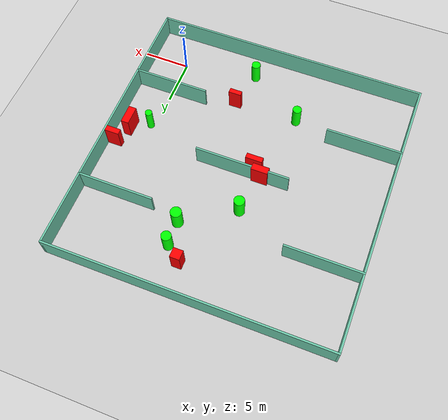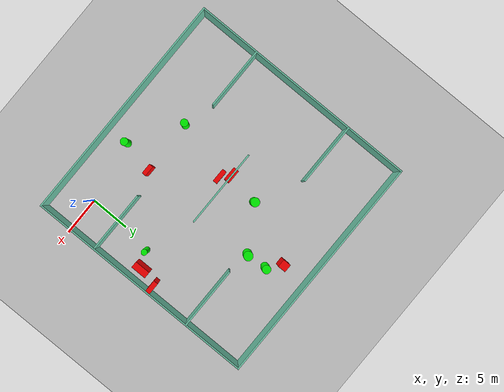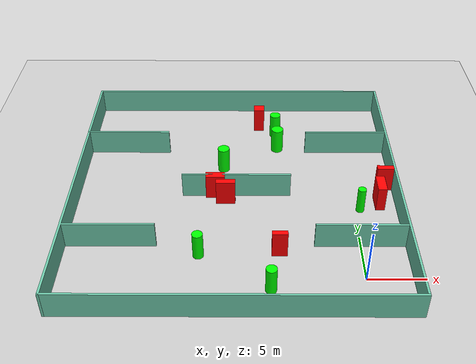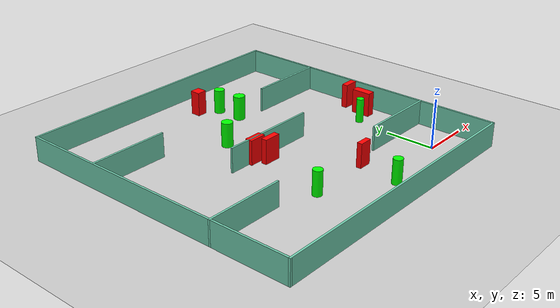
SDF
<sdf version="1.7">
 <world name="default">
  <light name="sun" type="directional">
   <pose>0 0 10 0 -0 0</pose>
   <diffuse>0.8 0.8 0.8 1</diffuse>
   <specular>0.2 0.2 0.2 1</specular>
   <attenuation>
    <range>1000</range>
    <constant>0.9</constant>
    <linear>0.01</linear>
    <quadratic>0.001</quadratic>
   </attenuation>
   <direction>-0.5 0.1 -0.9</direction>
   <spot><inner_angle>0</inner_angle><outer_angle>0</outer_angle><falloff>0</falloff></spot>
  </light>
  <model name="ground_plane">
   <static>1</static>
   <link name="link">
    <collision name="collision">
     <geometry><plane><normal>0 0 1</normal><size>100 100</size></plane></geometry>
     <surface>
      <contact><collide_bitmask>65535</collide_bitmask></contact>
      <friction><ode><mu>100</mu><mu2>50</mu2></ode></friction>
     </surface>
    </collision>
    <visual name="visual">
     <cast_shadows>0</cast_shadows>
     <geometry><plane><normal>0 0 1</normal><size>100 100</size></plane></geometry>
     <material>
      <script><uri>file://media/materials/scripts/gazebo.material</uri><name>Gazebo/Grey</name></script>
     </material>
    </visual>
   </link>
  </model>
  <gravity>0 0 -9.8</gravity>
  <magnetic_field>6e-06 2.3e-05 -4.2e-05</magnetic_field>
  <atmosphere type="adiabatic"/>
  <physics type="ode">
   <max_step_size>0.001</max_step_size>
   <real_time_factor>1</real_time_factor>
   <real_time_update_rate>1000</real_time_update_rate>
  </physics>
  <scene><ambient>0.4 0.4 0.4 1</ambient><background>0.7 0.7 0.7 1</background><shadows>1</shadows></scene>
  <spherical_coordinates>
   <surface_model>EARTH_WGS84</surface_model>
   <latitude_deg>0</latitude_deg>
   <longitude_deg>0</longitude_deg>
   <elevation>0</elevation>
   <heading_deg>0</heading_deg>
  </spherical_coordinates>
  <model name="my_base_walls">
   <link name="Wall_10">
    <collision name="Wall_10_Collision">
     <geometry><box><size>8.2 0.2 2.5</size></box></geometry>
     <pose>0 0 1.25 0 -0 0</pose>
    </collision>
    <visual name="Wall_10_Visual">
     <pose>0 0 1.25 0 -0 0</pose>
     <geometry><box><size>8.2 0.2 2.5</size></box></geometry>
     <material>
      <script><uri>file://media/materials/scripts/gazebo.material</uri><name>Gazebo/Grey</name></script>
      <ambient>0.435294 0.796078 0.67451 1</ambient>
     </material>
     <meta><layer>0</layer></meta>
    </visual>
    <pose>-11 -7 0 0 -0 0</pose>
   </link>
   <link name="Wall_12">
    <collision name="Wall_12_Collision">
     <geometry><box><size>8.2 0.2 2.5</size></box></geometry>
     <pose>0 0 1.25 0 -0 0</pose>
    </collision>
    <visual name="Wall_12_Visual">
     <pose>0 0 1.25 0 -0 0</pose>
     <geometry><box><size>8.2 0.2 2.5</size></box></geometry>
     <material>
      <script><uri>file://media/materials/scripts/gazebo.material</uri><name>Gazebo/Grey</name></script>
      <ambient>0.435294 0.796078 0.67451 1</ambient>
     </material>
     <meta><layer>0</layer></meta>
    </visual>
    <pose>-11 7 0 0 -0 0</pose>
   </link>
   <link name="Wall_14">
    <collision name="Wall_14_Collision">
     <geometry><box><size>8.2 0.2 2.5</size></box></geometry>
     <pose>0 0 1.25 0 -0 0</pose>
    </collision>
    <visual name="Wall_14_Visual">
     <pose>0 0 1.25 0 -0 0</pose>
     <geometry><box><size>8.2 0.2 2.5</size></box></geometry>
     <material>
      <script><uri>file://media/materials/scripts/gazebo.material</uri><name>Gazebo/Grey</name></script>
      <ambient>0.435294 0.796078 0.67451 1</ambient>
     </material>
     <meta><layer>0</layer></meta>
    </visual>
    <pose>11 7 0 0 -0 3.14159</pose>
   </link>
   <link name="Wall_16">
    <collision name="Wall_16_Collision">
     <geometry><box><size>10.2 0.2 2.5</size></box></geometry>
     <pose>0 0 1.25 0 -0 0</pose>
    </collision>
    <visual name="Wall_16_Visual">
     <pose>0 0 1.25 0 -0 0</pose>
     <geometry><box><size>10.2 0.2 2.5</size></box></geometry>
     <material>
      <script><uri>file://media/materials/scripts/gazebo.material</uri><name>Gazebo/Grey</name></script>
      <ambient>0.435294 0.796078 0.67451 1</ambient>
     </material>
     <meta><layer>0</layer></meta>
    </visual>
    <pose>0 0 0 0 -0 3.14159</pose>
   </link>
   <link name="Wall_2">
    <collision name="Wall_2_Collision">
     <geometry><box><size>30.2 0.2 2.5</size></box></geometry>
     <pose>0 0 1.25 0 -0 0</pose>
    </collision>
    <visual name="Wall_2_Visual">
     <pose>0 0 1.25 0 -0 0</pose>
     <geometry><box><size>30.2 0.2 2.5</size></box></geometry>
     <material>
      <script><uri>file://media/materials/scripts/gazebo.material</uri><name>Gazebo/Grey</name></script>
      <ambient>0.435294 0.796078 0.67451 1</ambient>
     </material>
     <meta><layer>0</layer></meta>
    </visual>
    <pose>0 -15 0 0 -0 3.14159</pose>
   </link>
   <link name="Wall_3">
    <collision name="Wall_3_Collision">
     <geometry><box><size>30.2 0.2 2.5</size></box></geometry>
     <pose>0 0 1.25 0 -0 0</pose>
    </collision>
    <visual name="Wall_3_Visual">
     <pose>0 0 1.25 0 -0 0</pose>
     <geometry><box><size>30.2 0.2 2.5</size></box></geometry>
     <material>
      <script><uri>file://media/materials/scripts/gazebo.material</uri><name>Gazebo/Grey</name></script>
      <ambient>0.435294 0.796078 0.67451 1</ambient>
     </material>
     <meta><layer>0</layer></meta>
    </visual>
    <pose>-15 0 0 0 -0 1.5708</pose>
   </link>
   <link name="Wall_4">
    <collision name="Wall_4_Collision">
     <geometry><box><size>30.2 0.2 2.5</size></box></geometry>
     <pose>0 0 1.25 0 -0 0</pose>
    </collision>
    <visual name="Wall_4_Visual">
     <pose>0 0 1.25 0 -0 0</pose>
     <geometry><box><size>30.2 0.2 2.5</size></box></geometry>
     <material>
      <script><uri>file://media/materials/scripts/gazebo.material</uri><name>Gazebo/Grey</name></script>
      <ambient>0.435294 0.796078 0.67451 1</ambient>
     </material>
     <meta><layer>0</layer></meta>
    </visual>
    <pose>0 15 0 0 -0 0</pose>
   </link>
   <link name="Wall_6">
    <collision name="Wall_6_Collision">
     <geometry><box><size>30.2 0.2 2.5</size></box></geometry>
     <pose>0 0 1.25 0 -0 0</pose>
    </collision>
    <visual name="Wall_6_Visual">
     <pose>0 0 1.25 0 -0 0</pose>
     <geometry><box><size>30.2 0.2 2.5</size></box></geometry>
     <material>
      <script><uri>file://media/materials/scripts/gazebo.material</uri><name>Gazebo/Grey</name></script>
      <ambient>0.435294 0.796078 0.67451 1</ambient>
     </material>
     <meta><layer>0</layer></meta>
    </visual>
    <pose>15 0 0 0 -0 1.5708</pose>
   </link>
   <link name="Wall_8">
    <collision name="Wall_8_Collision">
     <geometry><box><size>8.2 0.2 2.5</size></box></geometry>
     <pose>0 0 1.25 0 -0 0</pose>
    </collision>
    <visual name="Wall_8_Visual">
     <pose>0 0 1.25 0 -0 0</pose>
     <geometry><box><size>8.2 0.2 2.5</size></box></geometry>
     <material>
      <script><uri>file://media/materials/scripts/gazebo.material</uri><name>Gazebo/Grey</name></script>
      <ambient>0.435294 0.796078 0.67451 1</ambient>
     </material>
     <meta><layer>0</layer></meta>
    </visual>
    <pose>11 -7 0 0 -0 3.14159</pose>
   </link>
   <static>1</static>
   <pose>-11 11 0 0 -0 0</pose>
  </model>
  <model name="cylinder1">
   <static>1</static>
   <link name="link">
    <inertial>
     <mass>1</mass>
     <inertia><ixx>0.5</ixx><ixy>0</ixy><ixz>0</ixz><iyy>0.5</iyy><iyz>0</iyz><izz>1</izz></inertia>
    </inertial>
    <collision name="collision">
     <geometry><cylinder><radius>0.37866978920210953</radius><length>2.5</length></cylinder></geometry>
    </collision>
    <visual name="visual">
     <geometry><cylinder><radius>0.37866978920210953</radius><length>2.5</length></cylinder></geometry>
     <material>
      <ambient>0 1 0 1</ambient>
      <diffuse>0 1 0 1</diffuse>
      <specular>0.1 0.1 0.1 1</specular>
      <emissive>0 0 0 0</emissive>
     </material>
    </visual>
   </link>
   <pose>0.5034902190186088 8.801945231379603 1.25 0 0 0</pose>
  </model>
  <model name="cylinder2">
   <static>1</static>
   <link name="link">
    <inertial>
     <mass>1</mass>
     <inertia><ixx>0.5</ixx><ixy>0</ixy><ixz>0</ixz><iyy>0.5</iyy><iyz>0</iyz><izz>1</izz></inertia>
    </inertial>
    <collision name="collision">
     <geometry><cylinder><radius>0.5324692102656692</radius><length>2.5</length></cylinder></geometry>
    </collision>
    <visual name="visual">
     <geometry><cylinder><radius>0.5324692102656692</radius><length>2.5</length></cylinder></geometry>
     <material>
      <ambient>0 1 0 1</ambient>
      <diffuse>0 1 0 1</diffuse>
      <specular>0.1 0.1 0.1 1</specular>
      <emissive>0 0 0 0</emissive>
     </material>
    </visual>
   </link>
   <pose>-7.061003203140233 21.152429262126667 1.25 0 0 0</pose>
  </model>
  <model name="cylinder3">
   <static>1</static>
   <link name="link">
    <inertial>
     <mass>1</mass>
     <inertia><ixx>0.5</ixx><ixy>0</ixy><ixz>0</ixz><iyy>0.5</iyy><iyz>0</iyz><izz>1</izz></inertia>
    </inertial>
    <collision name="collision">
     <geometry><cylinder><radius>0.476283744943074</radius><length>2.5</length></cylinder></geometry>
    </collision>
    <visual name="visual">
     <geometry><cylinder><radius>0.476283744943074</radius><length>2.5</length></cylinder></geometry>
     <material>
      <ambient>0 1 0 1</ambient>
      <diffuse>0 1 0 1</diffuse>
      <specular>0.1 0.1 0.1 1</specular>
      <emissive>0 0 0 0</emissive>
     </material>
    </visual>
   </link>
   <pose>-8.002736642912932 -1.2788346298854085 1.25 0 0 0</pose>
  </model>
  <model name="cylinder4">
   <static>1</static>
   <link name="link">
    <inertial>
     <mass>1</mass>
     <inertia><ixx>0.5</ixx><ixy>0</ixy><ixz>0</ixz><iyy>0.5</iyy><iyz>0</iyz><izz>1</izz></inertia>
    </inertial>
    <collision name="collision">
     <geometry><cylinder><radius>0.5664391115641101</radius><length>2.5</length></cylinder></geometry>
    </collision>
    <visual name="visual">
     <geometry><cylinder><radius>0.5664391115641101</radius><length>2.5</length></cylinder></geometry>
     <material>
      <ambient>0 1 0 1</ambient>
      <diffuse>0 1 0 1</diffuse>
      <specular>0.1 0.1 0.1 1</specular>
      <emissive>0 0 0 0</emissive>
     </material>
    </visual>
   </link>
   <pose>-12.297529357234387 15.107318561041378 1.25 0 0 0</pose>
  </model>
  <model name="cylinder5">
   <static>1</static>
   <link name="link">
    <inertial>
     <mass>1</mass>
     <inertia><ixx>0.5</ixx><ixy>0</ixy><ixz>0</ixz><iyy>0.5</iyy><iyz>0</iyz><izz>1</izz></inertia>
    </inertial>
    <collision name="collision">
     <geometry><cylinder><radius>0.5887540103794147</radius><length>2.5</length></cylinder></geometry>
    </collision>
    <visual name="visual">
     <geometry><cylinder><radius>0.5887540103794147</radius><length>2.5</length></cylinder></geometry>
     <material>
      <ambient>0 1 0 1</ambient>
      <diffuse>0 1 0 1</diffuse>
      <specular>0.1 0.1 0.1 1</specular>
      <emissive>0 0 0 0</emissive>
     </material>
    </visual>
   </link>
   <pose>-6.92469886644419 18.501374581074153 1.25 0 0 0</pose>
  </model>
  <model name="cylinder6">
   <static>1</static>
   <link name="link">
    <inertial>
     <mass>1</mass>
     <inertia><ixx>0.5</ixx><ixy>0</ixy><ixz>0</ixz><iyy>0.5</iyy><iyz>0</iyz><izz>1</izz></inertia>
    </inertial>
    <collision name="collision">
     <geometry><cylinder><radius>0.47471370790150735</radius><length>2.5</length></cylinder></geometry>
    </collision>
    <visual name="visual">
     <geometry><cylinder><radius>0.47471370790150735</radius><length>2.5</length></cylinder></geometry>
     <material>
      <ambient>0 1 0 1</ambient>
      <diffuse>0 1 0 1</diffuse>
      <specular>0.1 0.1 0.1 1</specular>
      <emissive>0 0 0 0</emissive>
     </material>
    </visual>
   </link>
   <pose>-14.182056966305852 2.7547909775730304 1.25 0 0 0</pose>
  </model>
  <model name="box1">
   <static>1</static>
   <link name="link">
    <inertial>
     <mass>1</mass>
     <inertia><ixx>0.083</ixx><ixy>0</ixy><ixz>0</ixz><iyy>0.083</iyy><iyz>0</iyz><izz>0.083</izz></inertia>
    </inertial>
    <collision name="collision">
     <geometry><box><size>1.7776907593019633 0.7452040376306573 2.5</size></box></geometry>
    </collision>
    <visual name="visual">
     <geometry><box><size>1.7776907593019633 0.7452040376306573 2.5</size></box></geometry>
     <material>
      <ambient>1 0 0 1</ambient>
      <diffuse>1 0 0 1</diffuse>
      <specular>0.1 0.1 0.1 1</specular>
      <emissive>0 0 0 0</emissive>
     </material>
    </visual>
    <sensor name="my_contact" type="contact">
     <contact><collision>box_collision</collision><topic>__default_topic__</topic></contact>
    </sensor>
   </link>
   <pose>-12.972819941785378 10.944794357995438 1.25 0 0 0</pose>
  </model>
  <model name="box2">
   <static>1</static>
   <link name="link">
    <inertial>
     <mass>1</mass>
     <inertia><ixx>0.083</ixx><ixy>0</ixy><ixz>0</ixz><iyy>0.083</iyy><iyz>0</iyz><izz>0.083</izz></inertia>
    </inertial>
    <collision name="collision">
     <geometry><box><size>1.7887762713603814 0.5694868859383722 2.5</size></box></geometry>
    </collision>
    <visual name="visual">
     <geometry><box><size>1.7887762713603814 0.5694868859383722 2.5</size></box></geometry>
     <material>
      <ambient>1 0 0 1</ambient>
      <diffuse>1 0 0 1</diffuse>
      <specular>0.1 0.1 0.1 1</specular>
      <emissive>0 0 0 0</emissive>
     </material>
    </visual>
    <sensor name="my_contact" type="contact">
     <contact><collision>box_collision</collision><topic>__default_topic__</topic></contact>
    </sensor>
   </link>
   <pose>-11.986078652793346 9.966814362040356 1.25 0 0 0</pose>
  </model>
  <model name="box3">
   <static>1</static>
   <link name="link">
    <inertial>
     <mass>1</mass>
     <inertia><ixx>0.083</ixx><ixy>0</ixy><ixz>0</ixz><iyy>0.083</iyy><iyz>0</iyz><izz>0.083</izz></inertia>
    </inertial>
    <collision name="collision">
     <geometry><box><size>1.3623142016816008 0.5227562938641066 2.5</size></box></geometry>
    </collision>
    <visual name="visual">
     <geometry><box><size>1.3623142016816008 0.5227562938641066 2.5</size></box></geometry>
     <material>
      <ambient>1 0 0 1</ambient>
      <diffuse>1 0 0 1</diffuse>
      <specular>0.1 0.1 0.1 1</specular>
      <emissive>0 0 0 0</emissive>
     </material>
    </visual>
    <sensor name="my_contact" type="contact">
     <contact><collision>box_collision</collision><topic>__default_topic__</topic></contact>
    </sensor>
   </link>
   <pose>-7.174913550911084 2.951729550099575 1.25 0 0 0</pose>
  </model>
  <model name="box4">
   <static>1</static>
   <link name="link">
    <inertial>
     <mass>1</mass>
     <inertia><ixx>0.083</ixx><ixy>0</ixy><ixz>0</ixz><iyy>0.083</iyy><iyz>0</iyz><izz>0.083</izz></inertia>
    </inertial>
    <collision name="collision">
     <geometry><box><size>1.0363849205928921 1.026567718938137 2.5</size></box></geometry>
    </collision>
    <visual name="visual">
     <geometry><box><size>1.0363849205928921 1.026567718938137 2.5</size></box></geometry>
     <material>
      <ambient>1 0 0 1</ambient>
      <diffuse>1 0 0 1</diffuse>
      <specular>0.1 0.1 0.1 1</specular>
      <emissive>0 0 0 0</emissive>
     </material>
    </visual>
    <sensor name="my_contact" type="contact">
     <contact><collision>box_collision</collision><topic>__default_topic__</topic></contact>
    </sensor>
   </link>
   <pose>-8.733736687768783 22.497809700781687 1.25 0 0 0</pose>
  </model>
  <model name="box5">
   <static>1</static>
   <link name="link">
    <inertial>
     <mass>1</mass>
     <inertia><ixx>0.083</ixx><ixy>0</ixy><ixz>0</ixz><iyy>0.083</iyy><iyz>0</iyz><izz>0.083</izz></inertia>
    </inertial>
    <collision name="collision">
     <geometry><box><size>1.5773402998427253 0.6101437721809381 2.5</size></box></geometry>
    </collision>
    <visual name="visual">
     <geometry><box><size>1.5773402998427253 0.6101437721809381 2.5</size></box></geometry>
     <material>
      <ambient>1 0 0 1</ambient>
      <diffuse>1 0 0 1</diffuse>
      <specular>0.1 0.1 0.1 1</specular>
      <emissive>0 0 0 0</emissive>
     </material>
    </visual>
    <sensor name="my_contact" type="contact">
     <contact><collision>box_collision</collision><topic>__default_topic__</topic></contact>
    </sensor>
   </link>
   <pose>3.136258452275399 12.111666388795262 1.25 0 0 0</pose>
  </model>
  <model name="box6">
   <static>1</static>
   <link name="link">
    <inertial>
     <mass>1</mass>
     <inertia><ixx>0.083</ixx><ixy>0</ixy><ixz>0</ixz><iyy>0.083</iyy><iyz>0</iyz><izz>0.083</izz></inertia>
    </inertial>
    <collision name="collision">
     <geometry><box><size>0.8334817273257613 2.007795375706828 2.5</size></box></geometry>
    </collision>
    <visual name="visual">
     <geometry><box><size>0.8334817273257613 2.007795375706828 2.5</size></box></geometry>
     <material>
      <ambient>1 0 0 1</ambient>
      <diffuse>1 0 0 1</diffuse>
      <specular>0.1 0.1 0.1 1</specular>
      <emissive>0 0 0 0</emissive>
     </material>
    </visual>
    <sensor name="my_contact" type="contact">
     <contact><collision>box_collision</collision><topic>__default_topic__</topic></contact>
    </sensor>
   </link>
   <pose>2.3774549104722063 9.782768119036234 1.25 0 0 0</pose>
  </model>
 </world>
</sdf>
